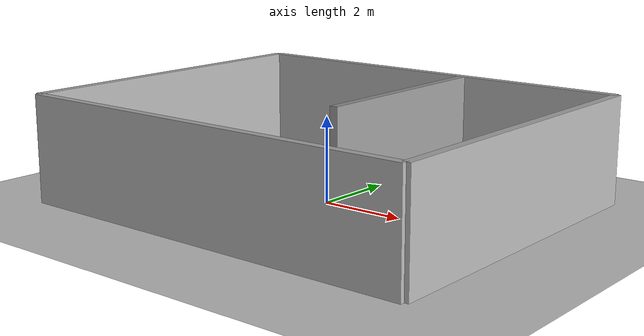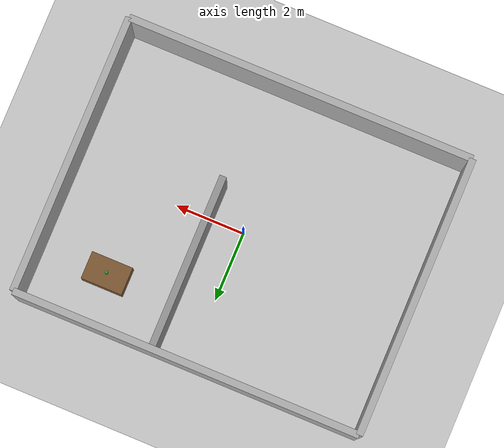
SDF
<?xml version="1.0" ?>
<sdf version="1.8">
  <world name="appartement">
    <physics name="1ms" type="ignored">
      <max_step_size>0.001</max_step_size>
      <real_time_factor>1.0</real_time_factor>
    </physics>

    <!-- Gazebo Fortress System Plugins -->
    <plugin filename="gz-sim-physics-system" name="gz::sim::systems::Physics"/>
    <plugin filename="gz-sim-user-commands-system" name="gz::sim::systems::UserCommands"/>
    <plugin filename="gz-sim-scene-broadcaster-system" name="gz::sim::systems::SceneBroadcaster"/>
    <plugin filename="gz-sim-sensors-system" name="gz::sim::systems::Sensors">
      <render_engine>ogre2</render_engine>
    </plugin>

    <!-- Sun Light -->
    <light type="directional" name="sun">
      <cast_shadows>true</cast_shadows>
      <pose>0 0 10 0 0 0</pose>
      <diffuse>0.8 0.8 0.8 1</diffuse>
      <specular>0.2 0.2 0.2 1</specular>
      <direction>-0.5 0.1 -0.9</direction>
    </light>

    <!-- Sol / Ground Plane -->
    <model name="ground_plane">
      <static>true</static>
      <link name="link">
        <collision name="collision">
          <geometry>
            <plane>
              <normal>0 0 1</normal>
              <size>20 20</size>
            </plane>
          </geometry>
        </collision>
        <visual name="visual">
          <geometry>
            <plane>
              <normal>0 0 1</normal>
              <size>20 20</size>
            </plane>
          </geometry>
          <material>
            <ambient>0.8 0.8 0.8 1</ambient>
            <diffuse>0.8 0.8 0.8 1</diffuse>
          </material>
        </visual>
      </link>
    </model>

    <!-- Appartement Outer & Inner Walls -->
    <!-- Outer Walls Box 10x8m -->
    <model name="apartment_walls">
      <static>true</static>
      <pose>0 0 1.25 0 0 0</pose>

      <!-- North Wall -->
      <link name="wall_north">
        <pose>0 4 0 0 0 0</pose>
        <collision name="col"><geometry><box><size>10 0.2 2.5</size></box></geometry></collision>
        <visual name="vis"><geometry><box><size>10 0.2 2.5</size></box></geometry><material><ambient>0.7 0.7 0.7 1</ambient></material></visual>
      </link>
      <!-- South Wall -->
      <link name="wall_south">
        <pose>0 -4 0 0 0 0</pose>
        <collision name="col"><geometry><box><size>10 0.2 2.5</size></box></geometry></collision>
        <visual name="vis"><geometry><box><size>10 0.2 2.5</size></box></geometry><material><ambient>0.7 0.7 0.7 1</ambient></material></visual>
      </link>
      <!-- East Wall -->
      <link name="wall_east">
        <pose>5 0 0 0 0 0</pose>
        <collision name="col"><geometry><box><size>0.2 8 2.5</size></box></geometry></collision>
        <visual name="vis"><geometry><box><size>0.2 8 2.5</size></box></geometry><material><ambient>0.7 0.7 0.7 1</ambient></material></visual>
      </link>
      <!-- West Wall -->
      <link name="wall_west">
        <pose>-5 0 0 0 0 0</pose>
        <collision name="col"><geometry><box><size>0.2 8 2.5</size></box></geometry></collision>
        <visual name="vis"><geometry><box><size>0.2 8 2.5</size></box></geometry><material><ambient>0.7 0.7 0.7 1</ambient></material></visual>
      </link>

      <!-- Room Divider Wall (Kitchen / Living Room) -->
      <link name="wall_kitchen_divider">
        <pose>1.0 1.5 0 0 0 0</pose>
        <collision name="col"><geometry><box><size>0.2 5 2.5</size></box></geometry></collision>
        <visual name="vis"><geometry><box><size>0.2 5 2.5</size></box></geometry><material><ambient>0.6 0.6 0.6 1</ambient></material></visual>
      </link>
    </model>

    <!-- Table in Kitchen -->
    <model name="kitchen_table">
      <static>true</static>
      <pose>3.0 2.5 0.4 0 0 0</pose>
      <link name="link">
        <collision name="col"><geometry><box><size>1.2 0.8 0.8</size></box></geometry></collision>
        <visual name="vis"><geometry><box><size>1.2 0.8 0.8</size></box></geometry><material><ambient>0.5 0.35 0.2 1</ambient></material></visual>
      </link>
    </model>

    <!-- Target Object (Bottle) on Kitchen Table -->
    <model name="target_bottle">
      <static>false</static>
      <pose>3.0 2.5 0.95 0 0 0</pose>
      <link name="link">
        <collision name="col"><geometry><cylinder><radius>0.04</radius><length>0.25</length></cylinder></geometry></collision>
        <visual name="vis"><geometry><cylinder><radius>0.04</radius><length>0.25</length></cylinder></geometry><material><ambient>0.1 0.7 0.2 1</ambient></material></visual>
        <inertial><mass>0.3</mass><inertia><ixx>0.001</ixx><ixy>0</ixy><ixz>0</ixz><iyy>0.001</iyy><iyz>0</iyz><izz>0.0005</izz></inertia></inertial>
      </link>
    </model>

  </world>
</sdf>
